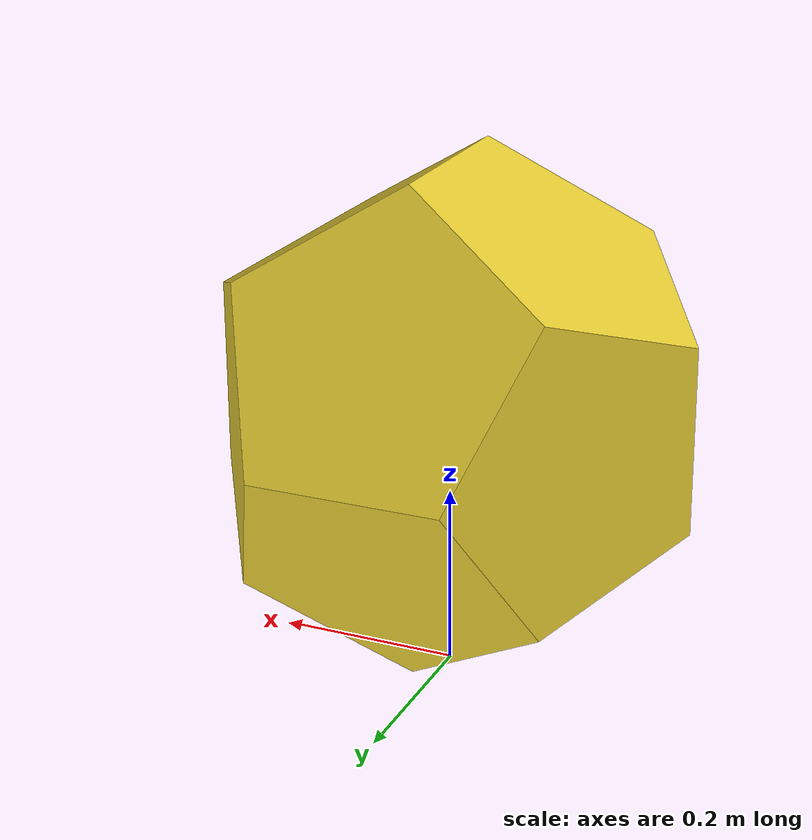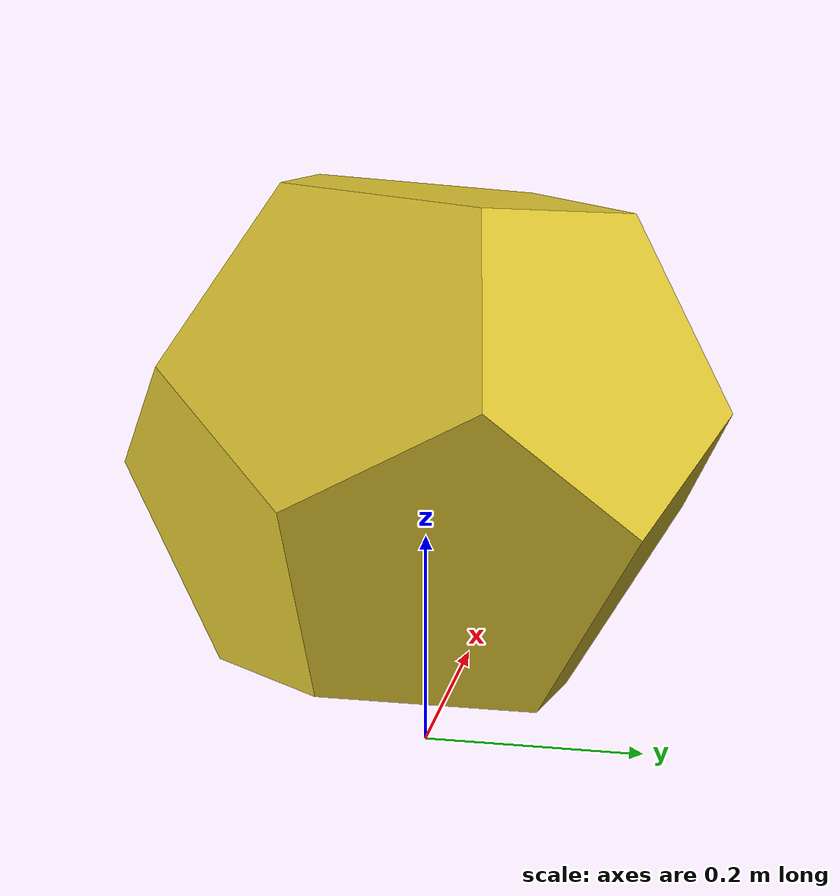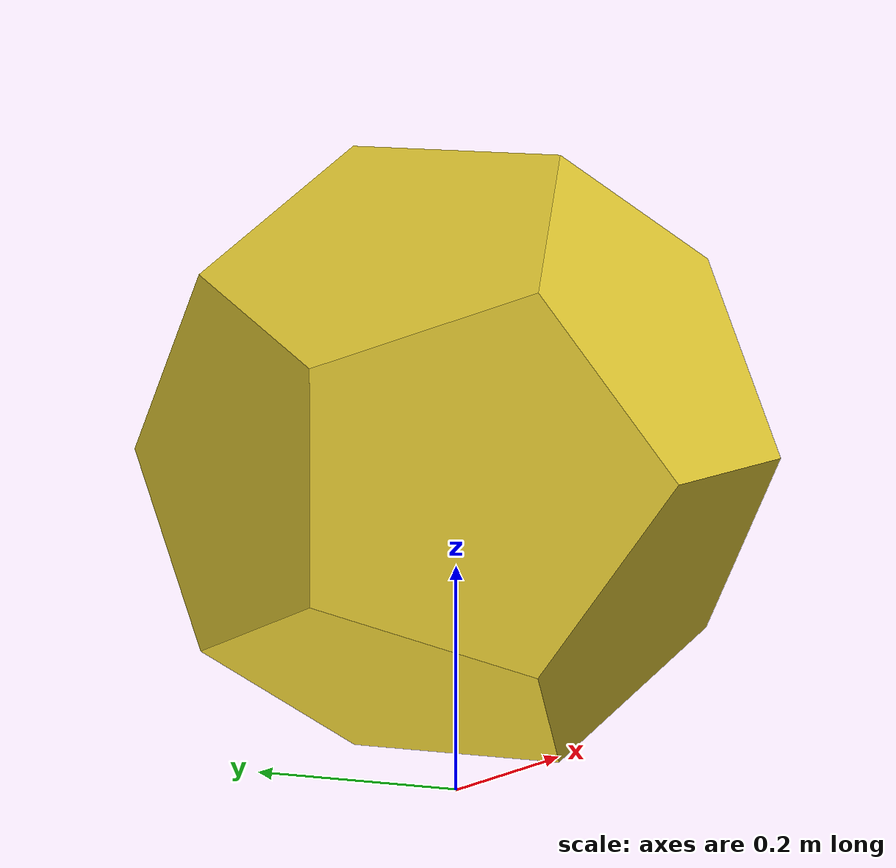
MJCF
<mujoco model="baseline_dodecahedron">
  <compiler angle="radian"/>
  <asset>
    <mesh name="dodecahedron"
          vertex="0.165  0.165  0.165
                  0.165  0.165 -0.165
                  0.165 -0.165  0.165
                  0.165 -0.165 -0.165
                 -0.165  0.165  0.165
                 -0.165  0.165 -0.165
                 -0.165 -0.165  0.165
                 -0.165 -0.165 -0.165
                  0.000  0.102  0.267
                  0.000  0.102 -0.267
                  0.000 -0.102  0.267
                  0.000 -0.102 -0.267
                  0.102  0.267  0.000
                  0.102 -0.267  0.000
                 -0.102  0.267  0.000
                 -0.102 -0.267  0.000
                  0.267  0.000  0.102
                  0.267  0.000 -0.102
                 -0.267  0.000  0.102
                 -0.267  0.000 -0.102"
          scale="1 1 1"/>
    <material name="steel" rgba="0.90 0.80 0.20 1" specular="0.6" shininess="0.5"/>
  </asset>
  <worldbody>
    <body name="bot" pos="0 0 0.30">
      <freejoint name="root"/>
      <geom name="dodeca_geom" type="mesh" mesh="dodecahedron"
            material="steel" mass="200"
            friction="0.6 0.005 0.0001"/>
    </body>
  </worldbody>
  <actuator/>
</mujoco>
